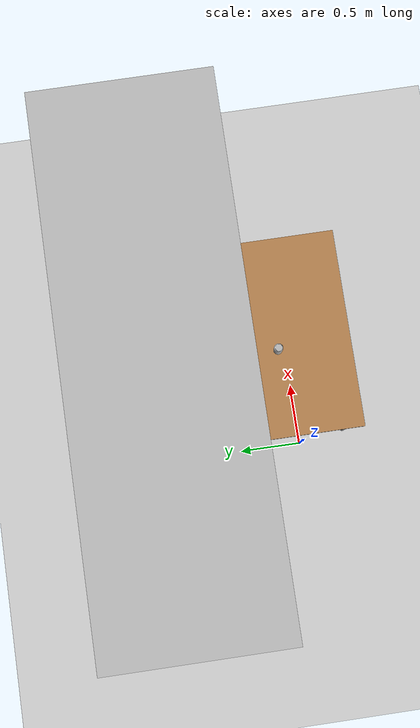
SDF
<sdf version="1.7">
 <world name="my_table_world">
  <model name="ground_plane">
   <static>1</static>
   <link name="link">
    <collision name="collision">
     <geometry><plane><normal>0 0 1</normal><size>100 100</size></plane></geometry>
     <surface>
      <contact><collide_bitmask>65535</collide_bitmask></contact>
      <friction><ode><mu>100</mu><mu2>50</mu2></ode></friction>
     </surface>
    </collision>
    <visual name="visual">
     <cast_shadows>0</cast_shadows>
     <geometry><plane><normal>0 0 1</normal><size>100 100</size></plane></geometry>
     <material>
      <script><uri>file://media/materials/scripts/gazebo.material</uri><name>Gazebo/Grey</name></script>
     </material>
    </visual>
   </link>
  </model>
  <light name="sun" type="directional">
   <pose>0 0 10 0 -0 0</pose>
   <diffuse>0.8 0.8 0.8 1</diffuse>
   <specular>0.2 0.2 0.2 1</specular>
   <attenuation>
    <range>1000</range>
    <constant>0.9</constant>
    <linear>0.01</linear>
    <quadratic>0.001</quadratic>
   </attenuation>
   <direction>-0.5 0.1 -0.9</direction>
   <spot><inner_angle>0</inner_angle><outer_angle>0</outer_angle><falloff>0</falloff></spot>
  </light>
  <model name="table">
   <static>1</static>
   <link name="link">
    <collision name="surface">
     <pose>0 0 1 0 -0 0</pose>
     <geometry><box><size>1.5 0.8 0.03</size></box></geometry>
     <surface><friction><ode><mu>0.6</mu><mu2>0.6</mu2></ode></friction></surface>
    </collision>
    <visual name="visual1">
     <pose>0 0 1 0 -0 0</pose>
     <geometry><box><size>1.5 0.8 0.03</size></box></geometry>
     <material>
      <script><uri>file://media/materials/scripts/gazebo.material</uri><name>Gazebo/Wood</name></script>
     </material>
    </visual>
    <collision name="front_left_leg">
     <pose>0.68 0.38 0.5 0 -0 0</pose>
     <geometry><cylinder><radius>0.02</radius><length>1</length></cylinder></geometry>
    </collision>
    <visual name="front_left_leg">
     <pose>0.68 0.38 0.5 0 -0 0</pose>
     <geometry><cylinder><radius>0.02</radius><length>1</length></cylinder></geometry>
     <material>
      <script><uri>file://media/materials/scripts/gazebo.material</uri><name>Gazebo/Grey</name></script>
     </material>
    </visual>
    <collision name="front_right_leg">
     <pose>0.68 -0.38 0.5 0 -0 0</pose>
     <geometry><cylinder><radius>0.02</radius><length>1</length></cylinder></geometry>
    </collision>
    <visual name="front_right_leg">
     <pose>0.68 -0.38 0.5 0 -0 0</pose>
     <geometry><cylinder><radius>0.02</radius><length>1</length></cylinder></geometry>
     <material>
      <script><uri>file://media/materials/scripts/gazebo.material</uri><name>Gazebo/Grey</name></script>
     </material>
    </visual>
    <collision name="back_right_leg">
     <pose>-0.68 -0.38 0.5 0 -0 0</pose>
     <geometry><cylinder><radius>0.02</radius><length>1</length></cylinder></geometry>
    </collision>
    <visual name="back_right_leg">
     <pose>-0.68 -0.38 0.5 0 -0 0</pose>
     <geometry><cylinder><radius>0.02</radius><length>1</length></cylinder></geometry>
     <material>
      <script><uri>file://media/materials/scripts/gazebo.material</uri><name>Gazebo/Grey</name></script>
     </material>
    </visual>
    <collision name="back_left_leg">
     <pose>-0.68 0.38 0.5 0 -0 0</pose>
     <geometry><cylinder><radius>0.02</radius><length>1</length></cylinder></geometry>
    </collision>
    <visual name="back_left_leg">
     <pose>-0.68 0.38 0.5 0 -0 0</pose>
     <geometry><cylinder><radius>0.02</radius><length>1</length></cylinder></geometry>
     <material>
      <script><uri>file://media/materials/scripts/gazebo.material</uri><name>Gazebo/Grey</name></script>
     </material>
    </visual>
   </link>
   <pose>0.75 0 0 0 -0 0</pose>
  </model>
  <physics type="ode">
   <max_step_size>0.001</max_step_size>
   <real_time_factor>1</real_time_factor>
   <real_time_update_rate>1000</real_time_update_rate>
  </physics>
  <gravity>0 0 -9.8</gravity>
  <magnetic_field>6e-06 2.3e-05 -4.2e-05</magnetic_field>
  <atmosphere type="adiabatic"/>
  <scene><ambient>0.4 0.4 0.4 1</ambient><background>0.7 0.7 0.7 1</background><shadows>1</shadows></scene>
  <spherical_coordinates>
   <surface_model>EARTH_WGS84</surface_model>
   <latitude_deg>0</latitude_deg>
   <longitude_deg>0</longitude_deg>
   <elevation>0</elevation>
   <heading_deg>0</heading_deg>
  </spherical_coordinates>
  <model name="coke_can">
   <link name="link">
    <inertial>
     <pose>0 0 0.06 0 -0 0</pose>
     <mass>0.39</mass>
     <inertia>
      <ixx>0.00055575</ixx>
      <ixy>0</ixy>
      <ixz>0</ixz>
      <iyy>0.00055575</iyy>
      <iyz>0</iyz>
      <izz>0.0001755</izz>
     </inertia>
    </inertial>
    <collision name="collision">
     <pose>0.003937 0.004724 -0.18 0 -0 0</pose>
     <geometry><mesh><uri>model://coke_can/meshes/coke_can.dae</uri></mesh></geometry>
     <surface>
      <friction><ode><mu>1</mu><mu2>1</mu2></ode></friction>
      <contact><ode><kp>1e+07</kp><kd>1</kd><min_depth>0.001</min_depth><max_vel>0.1</max_vel></ode></contact>
     </surface>
    </collision>
    <visual name="visual">
     <pose>0.003937 0.004724 -0.18 0 -0 0</pose>
     <geometry><mesh><uri>model://coke_can/meshes/coke_can.dae</uri></mesh></geometry>
    </visual>
   </link>
   <pose>0.650073 0.150152 1.01242 -0.002617 -0.027218 -0.000995</pose>
  </model>
  <model name="brick_box_3x1x3">
   <static>1</static>
   <link name="chassis">
    <pose>0 0 1.5 0 -0 0</pose>
    <collision name="collision"><geometry><box><size>3 1 3</size></box></geometry></collision>
    <visual name="visual">
     <geometry><mesh><uri>model://brick_box_3x1x3/meshes/simple_box.dae</uri><scale>3 1 3</scale></mesh></geometry>
     <material>
      <script>
       <uri>model://brick_box_3x1x3/materials/scripts</uri>
       <uri>model://brick_box_3x1x3/materials/textures</uri>
       <name>BrickBox/Diffuse</name>
      </script>
     </material>
    </visual>
   </link>
   <pose>0.363022 0.933155 0 0 -0 0</pose>
  </model>
 </world>
</sdf>
